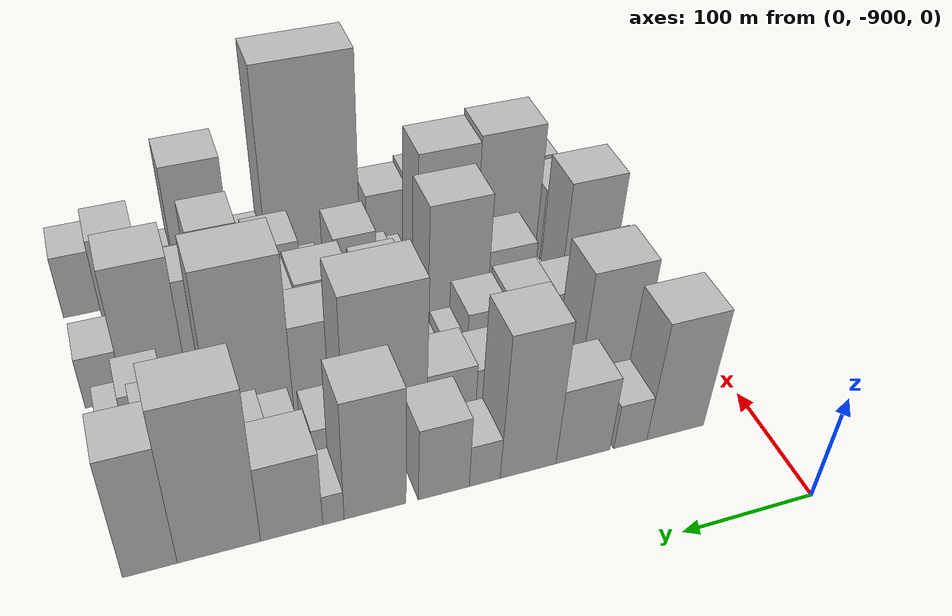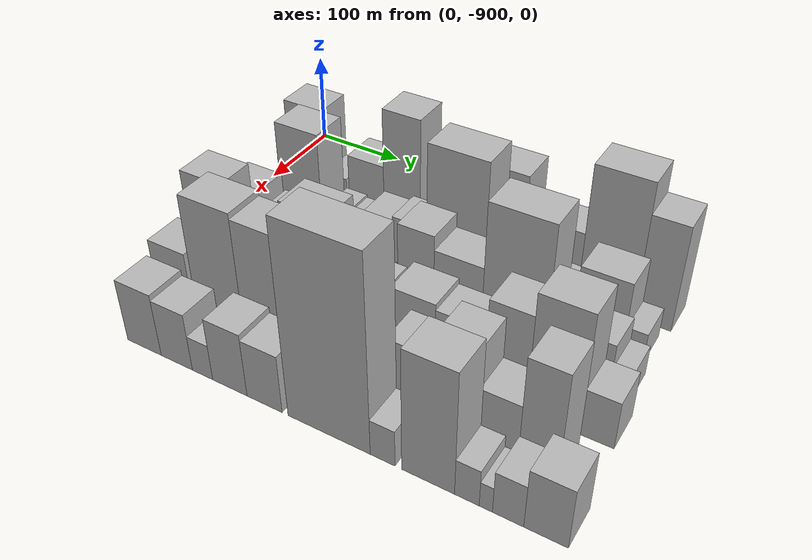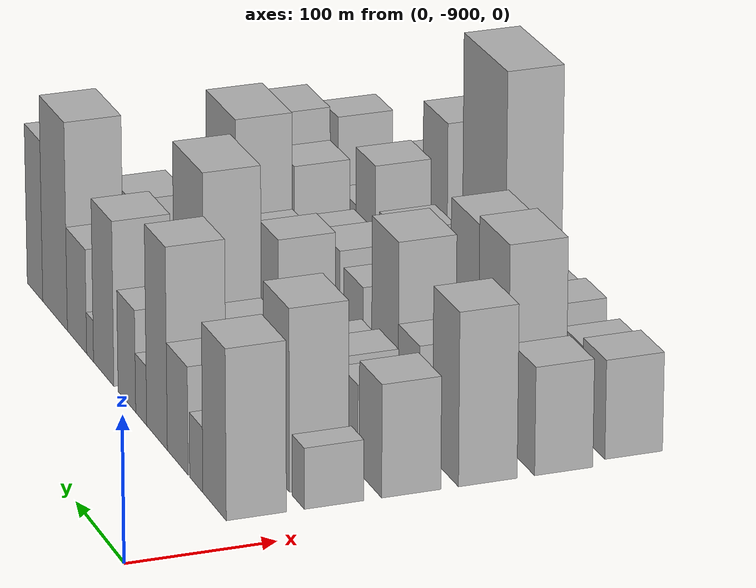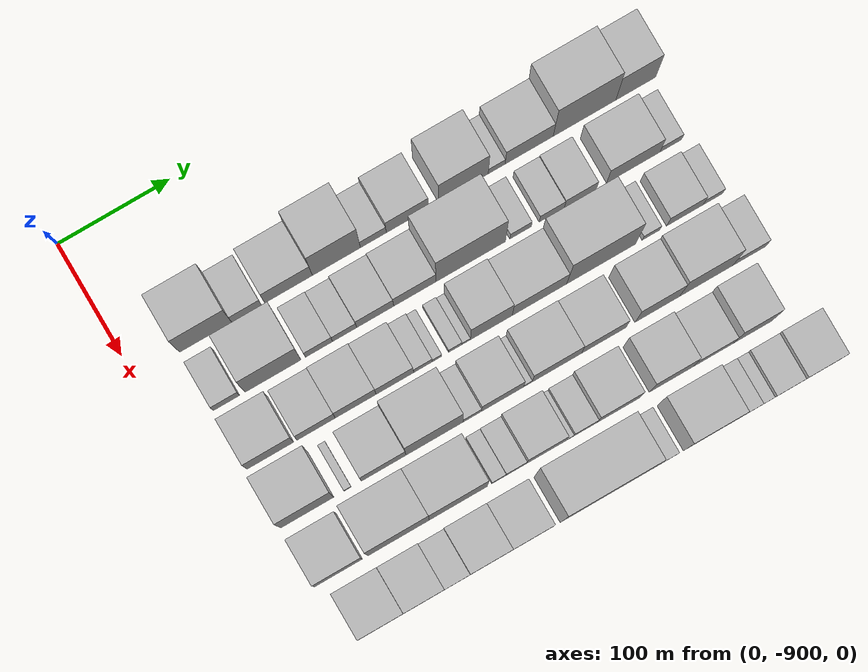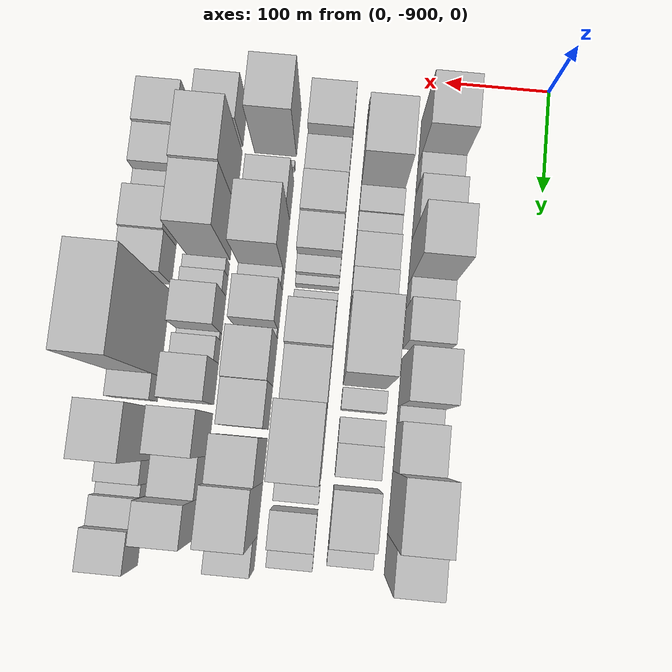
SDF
<sdf version="1.6">
 <world name="default">
  <model name="building_1">
   <static>1</static>
   <pose>100.0000 -836.9546 0 0.000000 0.000000 0.000000</pose>
   <link name="link">
    <pose>0 0 58.50 0 0 0</pose>
    <collision name="collision"><geometry><box><size>40.0000 46.0908 117.0000</size></box></geometry></collision>
    <visual name="visual">
     <cast_shadows>0</cast_shadows>
     <geometry><box><size>40.0000 46.0908 117.0000</size></box></geometry>
     <material>
      <script>
       <uri>model://HANNAS_wall/materials/scripts</uri>
       <uri>model://HANNAS_wall/materials/textures</uri>
       <name>vrc/HANNAS_wall</name>
      </script>
     </material>
    </visual>
   </link>
  </model>
  <model name="building_2">
   <static>1</static>
   <pose>100.0000 -800.7105 0 0.000000 0.000000 0.000000</pose>
   <link name="link">
    <pose>0 0 22.50 0 0 0</pose>
    <collision name="collision"><geometry><box><size>40.0000 26.3974 45.0000</size></box></geometry></collision>
    <visual name="visual">
     <cast_shadows>0</cast_shadows>
     <geometry><box><size>40.0000 26.3974 45.0000</size></box></geometry>
     <material>
      <script>
       <uri>model://HANNAS_wall/materials/scripts</uri>
       <uri>model://HANNAS_wall/materials/textures</uri>
       <name>vrc/HANNAS_wall</name>
      </script>
     </material>
    </visual>
   </link>
  </model>
  <model name="building_3">
   <static>1</static>
   <pose>100.0000 -763.3502 0 0.000000 0.000000 0.000000</pose>
   <link name="link">
    <pose>0 0 37.50 0 0 0</pose>
    <collision name="collision"><geometry><box><size>40.0000 42.3233 75.0000</size></box></geometry></collision>
    <visual name="visual">
     <cast_shadows>0</cast_shadows>
     <geometry><box><size>40.0000 42.3233 75.0000</size></box></geometry>
     <material>
      <script>
       <uri>model://HANNAS_wall/materials/scripts</uri>
       <uri>model://HANNAS_wall/materials/textures</uri>
       <name>vrc/HANNAS_wall</name>
      </script>
     </material>
    </visual>
   </link>
  </model>
  <model name="building_4">
   <static>1</static>
   <pose>100.0000 -720.8452 0 0.000000 0.000000 0.000000</pose>
   <link name="link">
    <pose>0 0 70.50 0 0 0</pose>
    <collision name="collision"><geometry><box><size>40.0000 42.6867 141.0000</size></box></geometry></collision>
    <visual name="visual">
     <cast_shadows>0</cast_shadows>
     <geometry><box><size>40.0000 42.6867 141.0000</size></box></geometry>
     <material>
      <script>
       <uri>model://HANNAS_wall/materials/scripts</uri>
       <uri>model://HANNAS_wall/materials/textures</uri>
       <name>vrc/HANNAS_wall</name>
      </script>
     </material>
    </visual>
   </link>
  </model>
  <model name="building_5">
   <static>1</static>
   <pose>100.0000 -687.9397 0 0.000000 0.000000 0.000000</pose>
   <link name="link">
    <pose>0 0 21.00 0 0 0</pose>
    <collision name="collision"><geometry><box><size>40.0000 23.1242 42.0000</size></box></geometry></collision>
    <visual name="visual">
     <cast_shadows>0</cast_shadows>
     <geometry><box><size>40.0000 23.1242 42.0000</size></box></geometry>
     <material>
      <script>
       <uri>model://HANNAS_wall/materials/scripts</uri>
       <uri>model://HANNAS_wall/materials/textures</uri>
       <name>vrc/HANNAS_wall</name>
      </script>
     </material>
    </visual>
   </link>
  </model>
  <model name="building_6">
   <static>1</static>
   <pose>100.0000 -657.6483 0 0.000000 0.000000 0.000000</pose>
   <link name="link">
    <pose>0 0 36.00 0 0 0</pose>
    <collision name="collision"><geometry><box><size>40.0000 37.4587 72.0000</size></box></geometry></collision>
    <visual name="visual">
     <cast_shadows>0</cast_shadows>
     <geometry><box><size>40.0000 37.4587 72.0000</size></box></geometry>
     <material>
      <script>
       <uri>model://HANNAS_wall/materials/scripts</uri>
       <uri>model://HANNAS_wall/materials/textures</uri>
       <name>vrc/HANNAS_wall</name>
      </script>
     </material>
    </visual>
   </link>
  </model>
  <model name="building_7">
   <static>1</static>
   <pose>100.0000 -607.7722 0 0.000000 0.000000 0.000000</pose>
   <link name="link">
    <pose>0 0 58.50 0 0 0</pose>
    <collision name="collision"><geometry><box><size>40.0000 44.2936 117.0000</size></box></geometry></collision>
    <visual name="visual">
     <cast_shadows>0</cast_shadows>
     <geometry><box><size>40.0000 44.2936 117.0000</size></box></geometry>
     <material>
      <script>
       <uri>model://HANNAS_wall/materials/scripts</uri>
       <uri>model://HANNAS_wall/materials/textures</uri>
       <name>vrc/HANNAS_wall</name>
      </script>
     </material>
    </visual>
   </link>
  </model>
  <model name="building_8">
   <static>1</static>
   <pose>100.0000 -578.1136 0 0.000000 0.000000 0.000000</pose>
   <link name="link">
    <pose>0 0 15.00 0 0 0</pose>
    <collision name="collision"><geometry><box><size>40.0000 15.0235 30.0000</size></box></geometry></collision>
    <visual name="visual">
     <cast_shadows>0</cast_shadows>
     <geometry><box><size>40.0000 15.0235 30.0000</size></box></geometry>
     <material>
      <script>
       <uri>model://HANNAS_wall/materials/scripts</uri>
       <uri>model://HANNAS_wall/materials/textures</uri>
       <name>vrc/HANNAS_wall</name>
      </script>
     </material>
    </visual>
   </link>
  </model>
  <model name="building_9">
   <static>1</static>
   <pose>100.0000 -549.1109 0 0.000000 0.000000 0.000000</pose>
   <link name="link">
    <pose>0 0 37.50 0 0 0</pose>
    <collision name="collision"><geometry><box><size>40.0000 42.9820 75.0000</size></box></geometry></collision>
    <visual name="visual">
     <cast_shadows>0</cast_shadows>
     <geometry><box><size>40.0000 42.9820 75.0000</size></box></geometry>
     <material>
      <script>
       <uri>model://HANNAS_wall/materials/scripts</uri>
       <uri>model://HANNAS_wall/materials/textures</uri>
       <name>vrc/HANNAS_wall</name>
      </script>
     </material>
    </visual>
   </link>
  </model>
  <model name="building_10">
   <static>1</static>
   <pose>100.0000 -499.6481 0 0.000000 0.000000 0.000000</pose>
   <link name="link">
    <pose>0 0 75.00 0 0 0</pose>
    <collision name="collision"><geometry><box><size>40.0000 55.9435 150.0000</size></box></geometry></collision>
    <visual name="visual">
     <cast_shadows>0</cast_shadows>
     <geometry><box><size>40.0000 55.9435 150.0000</size></box></geometry>
     <material>
      <script>
       <uri>model://HANNAS_wall/materials/scripts</uri>
       <uri>model://HANNAS_wall/materials/textures</uri>
       <name>vrc/HANNAS_wall</name>
      </script>
     </material>
    </visual>
   </link>
  </model>
  <model name="building_11">
   <static>1</static>
   <pose>100.0000 -453.7469 0 0.000000 0.000000 0.000000</pose>
   <link name="link">
    <pose>0 0 58.50 0 0 0</pose>
    <collision name="collision"><geometry><box><size>40.0000 35.8590 117.0000</size></box></geometry></collision>
    <visual name="visual">
     <cast_shadows>0</cast_shadows>
     <geometry><box><size>40.0000 35.8590 117.0000</size></box></geometry>
     <material>
      <script>
       <uri>model://HANNAS_wall/materials/scripts</uri>
       <uri>model://HANNAS_wall/materials/textures</uri>
       <name>vrc/HANNAS_wall</name>
      </script>
     </material>
    </visual>
   </link>
  </model>
  <model name="building_49">
   <static>1</static>
   <pose>152.0000 -848.3407 0 0.000000 0.000000 0.000000</pose>
   <link name="link">
    <pose>0 0 21.00 0 0 0</pose>
    <collision name="collision"><geometry><box><size>40.0000 23.3186 42.0000</size></box></geometry></collision>
    <visual name="visual">
     <cast_shadows>0</cast_shadows>
     <geometry><box><size>40.0000 23.3186 42.0000</size></box></geometry>
     <material>
      <script>
       <uri>model://HANNAS_wall/materials/scripts</uri>
       <uri>model://HANNAS_wall/materials/textures</uri>
       <name>vrc/HANNAS_wall</name>
      </script>
     </material>
    </visual>
   </link>
  </model>
  <model name="building_50">
   <static>1</static>
   <pose>152.0000 -806.9948 0 0.000000 0.000000 0.000000</pose>
   <link name="link">
    <pose>0 0 63.00 0 0 0</pose>
    <collision name="collision"><geometry><box><size>40.0000 49.3733 126.0000</size></box></geometry></collision>
    <visual name="visual">
     <cast_shadows>0</cast_shadows>
     <geometry><box><size>40.0000 49.3733 126.0000</size></box></geometry>
     <material>
      <script>
       <uri>model://HANNAS_wall/materials/scripts</uri>
       <uri>model://HANNAS_wall/materials/textures</uri>
       <name>vrc/HANNAS_wall</name>
      </script>
     </material>
    </visual>
   </link>
  </model>
  <model name="building_51">
   <static>1</static>
   <pose>152.0000 -766.2804 0 0.000000 0.000000 0.000000</pose>
   <link name="link">
    <pose>0 0 22.50 0 0 0</pose>
    <collision name="collision"><geometry><box><size>40.0000 24.0554 45.0000</size></box></geometry></collision>
    <visual name="visual">
     <cast_shadows>0</cast_shadows>
     <geometry><box><size>40.0000 24.0554 45.0000</size></box></geometry>
     <material>
      <script>
       <uri>model://HANNAS_wall/materials/scripts</uri>
       <uri>model://HANNAS_wall/materials/textures</uri>
       <name>vrc/HANNAS_wall</name>
      </script>
     </material>
    </visual>
   </link>
  </model>
  <model name="building_52">
   <static>1</static>
   <pose>152.0000 -743.5735 0 0.000000 0.000000 0.000000</pose>
   <link name="link">
    <pose>0 0 21.00 0 0 0</pose>
    <collision name="collision"><geometry><box><size>40.0000 21.3583 42.0000</size></box></geometry></collision>
    <visual name="visual">
     <cast_shadows>0</cast_shadows>
     <geometry><box><size>40.0000 21.3583 42.0000</size></box></geometry>
     <material>
      <script>
       <uri>model://HANNAS_wall/materials/scripts</uri>
       <uri>model://HANNAS_wall/materials/textures</uri>
       <name>vrc/HANNAS_wall</name>
      </script>
     </material>
    </visual>
   </link>
  </model>
  <model name="building_53">
   <static>1</static>
   <pose>152.0000 -716.4333 0 0.000000 0.000000 0.000000</pose>
   <link name="link">
    <pose>0 0 28.50 0 0 0</pose>
    <collision name="collision"><geometry><box><size>40.0000 32.9222 57.0000</size></box></geometry></collision>
    <visual name="visual">
     <cast_shadows>0</cast_shadows>
     <geometry><box><size>40.0000 32.9222 57.0000</size></box></geometry>
     <material>
      <script>
       <uri>model://HANNAS_wall/materials/scripts</uri>
       <uri>model://HANNAS_wall/materials/textures</uri>
       <name>vrc/HANNAS_wall</name>
      </script>
     </material>
    </visual>
   </link>
  </model>
  <model name="building_54">
   <static>1</static>
   <pose>152.0000 -681.1485 0 0.000000 0.000000 0.000000</pose>
   <link name="link">
    <pose>0 0 31.50 0 0 0</pose>
    <collision name="collision"><geometry><box><size>40.0000 37.6475 63.0000</size></box></geometry></collision>
    <visual name="visual">
     <cast_shadows>0</cast_shadows>
     <geometry><box><size>40.0000 37.6475 63.0000</size></box></geometry>
     <material>
      <script>
       <uri>model://HANNAS_wall/materials/scripts</uri>
       <uri>model://HANNAS_wall/materials/textures</uri>
       <name>vrc/HANNAS_wall</name>
      </script>
     </material>
    </visual>
   </link>
  </model>
  <model name="building_55">
   <static>1</static>
   <pose>152.0000 -631.4597 0 0.000000 0.000000 0.000000</pose>
   <link name="link">
    <pose>0 0 78.00 0 0 0</pose>
    <collision name="collision"><geometry><box><size>40.0000 61.7300 156.0000</size></box></geometry></collision>
    <visual name="visual">
     <cast_shadows>0</cast_shadows>
     <geometry><box><size>40.0000 61.7300 156.0000</size></box></geometry>
     <material>
      <script>
       <uri>model://HANNAS_wall/materials/scripts</uri>
       <uri>model://HANNAS_wall/materials/textures</uri>
       <name>vrc/HANNAS_wall</name>
      </script>
     </material>
    </visual>
   </link>
  </model>
  <model name="building_56">
   <static>1</static>
   <pose>152.0000 -587.0116 0 0.000000 0.000000 0.000000</pose>
   <link name="link">
    <pose>0 0 18.00 0 0 0</pose>
    <collision name="collision"><geometry><box><size>40.0000 19.1662 36.0000</size></box></geometry></collision>
    <visual name="visual">
     <cast_shadows>0</cast_shadows>
     <geometry><box><size>40.0000 19.1662 36.0000</size></box></geometry>
     <material>
      <script>
       <uri>model://HANNAS_wall/materials/scripts</uri>
       <uri>model://HANNAS_wall/materials/textures</uri>
       <name>vrc/HANNAS_wall</name>
      </script>
     </material>
    </visual>
   </link>
  </model>
  <model name="building_57">
   <static>1</static>
   <pose>152.0000 -559.1922 0 0.000000 0.000000 0.000000</pose>
   <link name="link">
    <pose>0 0 21.00 0 0 0</pose>
    <collision name="collision"><geometry><box><size>40.0000 22.4726 42.0000</size></box></geometry></collision>
    <visual name="visual">
     <cast_shadows>0</cast_shadows>
     <geometry><box><size>40.0000 22.4726 42.0000</size></box></geometry>
     <material>
      <script>
       <uri>model://HANNAS_wall/materials/scripts</uri>
       <uri>model://HANNAS_wall/materials/textures</uri>
       <name>vrc/HANNAS_wall</name>
      </script>
     </material>
    </visual>
   </link>
  </model>
  <model name="building_58">
   <static>1</static>
   <pose>152.0000 -533.6218 0 0.000000 0.000000 0.000000</pose>
   <link name="link">
    <pose>0 0 24.00 0 0 0</pose>
    <collision name="collision"><geometry><box><size>40.0000 28.6683 48.0000</size></box></geometry></collision>
    <visual name="visual">
     <cast_shadows>0</cast_shadows>
     <geometry><box><size>40.0000 28.6683 48.0000</size></box></geometry>
     <material>
      <script>
       <uri>model://HANNAS_wall/materials/scripts</uri>
       <uri>model://HANNAS_wall/materials/textures</uri>
       <name>vrc/HANNAS_wall</name>
      </script>
     </material>
    </visual>
   </link>
  </model>
  <model name="building_59">
   <static>1</static>
   <pose>152.0000 -486.4755 0 0.000000 0.000000 0.000000</pose>
   <link name="link">
    <pose>0 0 40.50 0 0 0</pose>
    <collision name="collision"><geometry><box><size>40.0000 47.6243 81.0000</size></box></geometry></collision>
    <visual name="visual">
     <cast_shadows>0</cast_shadows>
     <geometry><box><size>40.0000 47.6243 81.0000</size></box></geometry>
     <material>
      <script>
       <uri>model://HANNAS_wall/materials/scripts</uri>
       <uri>model://HANNAS_wall/materials/textures</uri>
       <name>vrc/HANNAS_wall</name>
      </script>
     </material>
    </visual>
   </link>
  </model>
  <model name="building_60">
   <static>1</static>
   <pose>152.0000 -452.9226 0 0.000000 0.000000 0.000000</pose>
   <link name="link">
    <pose>0 0 16.50 0 0 0</pose>
    <collision name="collision"><geometry><box><size>40.0000 19.4815 33.0000</size></box></geometry></collision>
    <visual name="visual">
     <cast_shadows>0</cast_shadows>
     <geometry><box><size>40.0000 19.4815 33.0000</size></box></geometry>
     <material>
      <script>
       <uri>model://HANNAS_wall/materials/scripts</uri>
       <uri>model://HANNAS_wall/materials/textures</uri>
       <name>vrc/HANNAS_wall</name>
      </script>
     </material>
    </visual>
   </link>
  </model>
  <model name="building_94">
   <static>1</static>
   <pose>204.0000 -839.3285 0 0.000000 0.000000 0.000000</pose>
   <link name="link">
    <pose>0 0 39.00 0 0 0</pose>
    <collision name="collision"><geometry><box><size>40.0000 41.3431 78.0000</size></box></geometry></collision>
    <visual name="visual">
     <cast_shadows>0</cast_shadows>
     <geometry><box><size>40.0000 41.3431 78.0000</size></box></geometry>
     <material>
      <script>
       <uri>model://HANNAS_wall/materials/scripts</uri>
       <uri>model://HANNAS_wall/materials/textures</uri>
       <name>vrc/HANNAS_wall</name>
      </script>
     </material>
    </visual>
   </link>
  </model>
  <model name="building_95">
   <static>1</static>
   <pose>204.0000 -798.7464 0 0.000000 0.000000 0.000000</pose>
   <link name="link">
    <pose>0 0 30.00 0 0 0</pose>
    <collision name="collision"><geometry><box><size>40.0000 33.8210 60.0000</size></box></geometry></collision>
    <visual name="visual">
     <cast_shadows>0</cast_shadows>
     <geometry><box><size>40.0000 33.8210 60.0000</size></box></geometry>
     <material>
      <script>
       <uri>model://HANNAS_wall/materials/scripts</uri>
       <uri>model://HANNAS_wall/materials/textures</uri>
       <name>vrc/HANNAS_wall</name>
      </script>
     </material>
    </visual>
   </link>
  </model>
  <model name="building_96">
   <static>1</static>
   <pose>204.0000 -763.7818 0 0.000000 0.000000 0.000000</pose>
   <link name="link">
    <pose>0 0 33.00 0 0 0</pose>
    <collision name="collision"><geometry><box><size>40.0000 36.1082 66.0000</size></box></geometry></collision>
    <visual name="visual">
     <cast_shadows>0</cast_shadows>
     <geometry><box><size>40.0000 36.1082 66.0000</size></box></geometry>
     <material>
      <script>
       <uri>model://HANNAS_wall/materials/scripts</uri>
       <uri>model://HANNAS_wall/materials/textures</uri>
       <name>vrc/HANNAS_wall</name>
      </script>
     </material>
    </visual>
   </link>
  </model>
  <model name="building_97">
   <static>1</static>
   <pose>204.0000 -729.1029 0 0.000000 0.000000 0.000000</pose>
   <link name="link">
    <pose>0 0 30.00 0 0 0</pose>
    <collision name="collision"><geometry><box><size>40.0000 33.2497 60.0000</size></box></geometry></collision>
    <visual name="visual">
     <cast_shadows>0</cast_shadows>
     <geometry><box><size>40.0000 33.2497 60.0000</size></box></geometry>
     <material>
      <script>
       <uri>model://HANNAS_wall/materials/scripts</uri>
       <uri>model://HANNAS_wall/materials/textures</uri>
       <name>vrc/HANNAS_wall</name>
      </script>
     </material>
    </visual>
   </link>
  </model>
  <model name="building_98">
   <static>1</static>
   <pose>204.0000 -704.1733 0 0.000000 0.000000 0.000000</pose>
   <link name="link">
    <pose>0 0 16.50 0 0 0</pose>
    <collision name="collision"><geometry><box><size>40.0000 16.6094 33.0000</size></box></geometry></collision>
    <visual name="visual">
     <cast_shadows>0</cast_shadows>
     <geometry><box><size>40.0000 16.6094 33.0000</size></box></geometry>
     <material>
      <script>
       <uri>model://HANNAS_wall/materials/scripts</uri>
       <uri>model://HANNAS_wall/materials/textures</uri>
       <name>vrc/HANNAS_wall</name>
      </script>
     </material>
    </visual>
   </link>
  </model>
  <model name="building_99">
   <static>1</static>
   <pose>204.0000 -691.5956 0 0.000000 0.000000 0.000000</pose>
   <link name="link">
    <pose>0 0 10.50 0 0 0</pose>
    <collision name="collision"><geometry><box><size>40.0000 8.5460 21.0000</size></box></geometry></collision>
    <visual name="visual">
     <cast_shadows>0</cast_shadows>
     <geometry><box><size>40.0000 8.5460 21.0000</size></box></geometry>
     <material>
      <script>
       <uri>model://HANNAS_wall/materials/scripts</uri>
       <uri>model://HANNAS_wall/materials/textures</uri>
       <name>vrc/HANNAS_wall</name>
      </script>
     </material>
    </visual>
   </link>
  </model>
  <model name="building_100">
   <static>1</static>
   <pose>204.0000 -675.3369 0 0.000000 0.000000 0.000000</pose>
   <link name="link">
    <pose>0 0 12.00 0 0 0</pose>
    <collision name="collision"><geometry><box><size>40.0000 11.9713 24.0000</size></box></geometry></collision>
    <visual name="visual">
     <cast_shadows>0</cast_shadows>
     <geometry><box><size>40.0000 11.9713 24.0000</size></box></geometry>
     <material>
      <script>
       <uri>model://HANNAS_wall/materials/scripts</uri>
       <uri>model://HANNAS_wall/materials/textures</uri>
       <name>vrc/HANNAS_wall</name>
      </script>
     </material>
    </visual>
   </link>
  </model>
  <model name="building_101">
   <static>1</static>
   <pose>204.0000 -665.6635 0 0.000000 0.000000 0.000000</pose>
   <link name="link">
    <pose>0 0 7.50 0 0 0</pose>
    <collision name="collision"><geometry><box><size>40.0000 7.3756 15.0000</size></box></geometry></collision>
    <visual name="visual">
     <cast_shadows>0</cast_shadows>
     <geometry><box><size>40.0000 7.3756 15.0000</size></box></geometry>
     <material>
      <script>
       <uri>model://HANNAS_wall/materials/scripts</uri>
       <uri>model://HANNAS_wall/materials/textures</uri>
       <name>vrc/HANNAS_wall</name>
      </script>
     </material>
    </visual>
   </link>
  </model>
  <model name="building_102">
   <static>1</static>
   <pose>204.0000 -643.3787 0 0.000000 0.000000 0.000000</pose>
   <link name="link">
    <pose>0 0 51.00 0 0 0</pose>
    <collision name="collision"><geometry><box><size>40.0000 37.1941 102.0000</size></box></geometry></collision>
    <visual name="visual">
     <cast_shadows>0</cast_shadows>
     <geometry><box><size>40.0000 37.1941 102.0000</size></box></geometry>
     <material>
      <script>
       <uri>model://HANNAS_wall/materials/scripts</uri>
       <uri>model://HANNAS_wall/materials/textures</uri>
       <name>vrc/HANNAS_wall</name>
      </script>
     </material>
    </visual>
   </link>
  </model>
  <model name="building_103">
   <static>1</static>
   <pose>204.0000 -600.5441 0 0.000000 0.000000 0.000000</pose>
   <link name="link">
    <pose>0 0 43.50 0 0 0</pose>
    <collision name="collision"><geometry><box><size>40.0000 48.4751 87.0000</size></box></geometry></collision>
    <visual name="visual">
     <cast_shadows>0</cast_shadows>
     <geometry><box><size>40.0000 48.4751 87.0000</size></box></geometry>
     <material>
      <script>
       <uri>model://HANNAS_wall/materials/scripts</uri>
       <uri>model://HANNAS_wall/materials/textures</uri>
       <name>vrc/HANNAS_wall</name>
      </script>
     </material>
    </visual>
   </link>
  </model>
  <model name="building_104">
   <static>1</static>
   <pose>204.0000 -545.6280 0 0.000000 0.000000 0.000000</pose>
   <link name="link">
    <pose>0 0 78.00 0 0 0</pose>
    <collision name="collision"><geometry><box><size>40.0000 61.3572 156.0000</size></box></geometry></collision>
    <visual name="visual">
     <cast_shadows>0</cast_shadows>
     <geometry><box><size>40.0000 61.3572 156.0000</size></box></geometry>
     <material>
      <script>
       <uri>model://HANNAS_wall/materials/scripts</uri>
       <uri>model://HANNAS_wall/materials/textures</uri>
       <name>vrc/HANNAS_wall</name>
      </script>
     </material>
    </visual>
   </link>
  </model>
  <model name="building_105">
   <static>1</static>
   <pose>204.0000 -501.0361 0 0.000000 0.000000 0.000000</pose>
   <link name="link">
    <pose>0 0 15.00 0 0 0</pose>
    <collision name="collision"><geometry><box><size>40.0000 15.8264 30.0000</size></box></geometry></collision>
    <visual name="visual">
     <cast_shadows>0</cast_shadows>
     <geometry><box><size>40.0000 15.8264 30.0000</size></box></geometry>
     <material>
      <script>
       <uri>model://HANNAS_wall/materials/scripts</uri>
       <uri>model://HANNAS_wall/materials/textures</uri>
       <name>vrc/HANNAS_wall</name>
      </script>
     </material>
    </visual>
   </link>
  </model>
  <model name="building_106">
   <static>1</static>
   <pose>204.0000 -470.7865 0 0.000000 0.000000 0.000000</pose>
   <link name="link">
    <pose>0 0 28.50 0 0 0</pose>
    <collision name="collision"><geometry><box><size>40.0000 32.6728 57.0000</size></box></geometry></collision>
    <visual name="visual">
     <cast_shadows>0</cast_shadows>
     <geometry><box><size>40.0000 32.6728 57.0000</size></box></geometry>
     <material>
      <script>
       <uri>model://HANNAS_wall/materials/scripts</uri>
       <uri>model://HANNAS_wall/materials/textures</uri>
       <name>vrc/HANNAS_wall</name>
      </script>
     </material>
    </visual>
   </link>
  </model>
  <model name="building_107">
   <static>1</static>
   <pose>204.0000 -445.6400 0 0.000000 0.000000 0.000000</pose>
   <link name="link">
    <pose>0 0 16.50 0 0 0</pose>
    <collision name="collision"><geometry><box><size>40.0000 17.6203 33.0000</size></box></geometry></collision>
    <visual name="visual">
     <cast_shadows>0</cast_shadows>
     <geometry><box><size>40.0000 17.6203 33.0000</size></box></geometry>
     <material>
      <script>
       <uri>model://HANNAS_wall/materials/scripts</uri>
       <uri>model://HANNAS_wall/materials/textures</uri>
       <name>vrc/HANNAS_wall</name>
      </script>
     </material>
    </visual>
   </link>
  </model>
  <model name="building_142">
   <static>1</static>
   <pose>256.0000 -836.6003 0 0.000000 0.000000 0.000000</pose>
   <link name="link">
    <pose>0 0 60.00 0 0 0</pose>
    <collision name="collision"><geometry><box><size>40.0000 46.7994 120.0000</size></box></geometry></collision>
    <visual name="visual">
     <cast_shadows>0</cast_shadows>
     <geometry><box><size>40.0000 46.7994 120.0000</size></box></geometry>
     <material>
      <script>
       <uri>model://HANNAS_wall/materials/scripts</uri>
       <uri>model://HANNAS_wall/materials/textures</uri>
       <name>vrc/HANNAS_wall</name>
      </script>
     </material>
    </visual>
   </link>
  </model>
  <model name="building_143">
   <static>1</static>
   <pose>256.0000 -800.9864 0 0.000000 0.000000 0.000000</pose>
   <link name="link">
    <pose>0 0 7.50 0 0 0</pose>
    <collision name="collision"><geometry><box><size>40.0000 6.4284 15.0000</size></box></geometry></collision>
    <visual name="visual">
     <cast_shadows>0</cast_shadows>
     <geometry><box><size>40.0000 6.4284 15.0000</size></box></geometry>
     <material>
      <script>
       <uri>model://HANNAS_wall/materials/scripts</uri>
       <uri>model://HANNAS_wall/materials/textures</uri>
       <name>vrc/HANNAS_wall</name>
      </script>
     </material>
    </visual>
   </link>
  </model>
  <model name="building_144">
   <static>1</static>
   <pose>256.0000 -769.0156 0 0.000000 0.000000 0.000000</pose>
   <link name="link">
    <pose>0 0 34.50 0 0 0</pose>
    <collision name="collision"><geometry><box><size>40.0000 39.5131 69.0000</size></box></geometry></collision>
    <visual name="visual">
     <cast_shadows>0</cast_shadows>
     <geometry><box><size>40.0000 39.5131 69.0000</size></box></geometry>
     <material>
      <script>
       <uri>model://HANNAS_wall/materials/scripts</uri>
       <uri>model://HANNAS_wall/materials/textures</uri>
       <name>vrc/HANNAS_wall</name>
      </script>
     </material>
    </visual>
   </link>
  </model>
  <model name="building_145">
   <static>1</static>
   <pose>256.0000 -724.0854 0 0.000000 0.000000 0.000000</pose>
   <link name="link">
    <pose>0 0 63.00 0 0 0</pose>
    <collision name="collision"><geometry><box><size>40.0000 50.3472 126.0000</size></box></geometry></collision>
    <visual name="visual">
     <cast_shadows>0</cast_shadows>
     <geometry><box><size>40.0000 50.3472 126.0000</size></box></geometry>
     <material>
      <script>
       <uri>model://HANNAS_wall/materials/scripts</uri>
       <uri>model://HANNAS_wall/materials/textures</uri>
       <name>vrc/HANNAS_wall</name>
      </script>
     </material>
    </visual>
   </link>
  </model>
  <model name="building_146">
   <static>1</static>
   <pose>256.0000 -690.6358 0 0.000000 0.000000 0.000000</pose>
   <link name="link">
    <pose>0 0 16.50 0 0 0</pose>
    <collision name="collision"><geometry><box><size>40.0000 16.5521 33.0000</size></box></geometry></collision>
    <visual name="visual">
     <cast_shadows>0</cast_shadows>
     <geometry><box><size>40.0000 16.5521 33.0000</size></box></geometry>
     <material>
      <script>
       <uri>model://HANNAS_wall/materials/scripts</uri>
       <uri>model://HANNAS_wall/materials/textures</uri>
       <name>vrc/HANNAS_wall</name>
      </script>
     </material>
    </visual>
   </link>
  </model>
  <model name="building_147">
   <static>1</static>
   <pose>256.0000 -663.6301 0 0.000000 0.000000 0.000000</pose>
   <link name="link">
    <pose>0 0 34.50 0 0 0</pose>
    <collision name="collision"><geometry><box><size>40.0000 37.4593 69.0000</size></box></geometry></collision>
    <visual name="visual">
     <cast_shadows>0</cast_shadows>
     <geometry><box><size>40.0000 37.4593 69.0000</size></box></geometry>
     <material>
      <script>
       <uri>model://HANNAS_wall/materials/scripts</uri>
       <uri>model://HANNAS_wall/materials/textures</uri>
       <name>vrc/HANNAS_wall</name>
      </script>
     </material>
    </visual>
   </link>
  </model>
  <model name="building_148">
   <static>1</static>
   <pose>256.0000 -641.1919 0 0.000000 0.000000 0.000000</pose>
   <link name="link">
    <pose>0 0 9.00 0 0 0</pose>
    <collision name="collision"><geometry><box><size>40.0000 7.4171 18.0000</size></box></geometry></collision>
    <visual name="visual">
     <cast_shadows>0</cast_shadows>
     <geometry><box><size>40.0000 7.4171 18.0000</size></box></geometry>
     <material>
      <script>
       <uri>model://HANNAS_wall/materials/scripts</uri>
       <uri>model://HANNAS_wall/materials/textures</uri>
       <name>vrc/HANNAS_wall</name>
      </script>
     </material>
    </visual>
   </link>
  </model>
  <model name="building_149">
   <static>1</static>
   <pose>256.0000 -615.4898 0 0.000000 0.000000 0.000000</pose>
   <link name="link">
    <pose>0 0 39.00 0 0 0</pose>
    <collision name="collision"><geometry><box><size>40.0000 43.9872 78.0000</size></box></geometry></collision>
    <visual name="visual">
     <cast_shadows>0</cast_shadows>
     <geometry><box><size>40.0000 43.9872 78.0000</size></box></geometry>
     <material>
      <script>
       <uri>model://HANNAS_wall/materials/scripts</uri>
       <uri>model://HANNAS_wall/materials/textures</uri>
       <name>vrc/HANNAS_wall</name>
      </script>
     </material>
    </visual>
   </link>
  </model>
  <model name="building_150">
   <static>1</static>
   <pose>256.0000 -573.6468 0 0.000000 0.000000 0.000000</pose>
   <link name="link">
    <pose>0 0 36.00 0 0 0</pose>
    <collision name="collision"><geometry><box><size>40.0000 39.6987 72.0000</size></box></geometry></collision>
    <visual name="visual">
     <cast_shadows>0</cast_shadows>
     <geometry><box><size>40.0000 39.6987 72.0000</size></box></geometry>
     <material>
      <script>
       <uri>model://HANNAS_wall/materials/scripts</uri>
       <uri>model://HANNAS_wall/materials/textures</uri>
       <name>vrc/HANNAS_wall</name>
      </script>
     </material>
    </visual>
   </link>
  </model>
  <model name="building_151">
   <static>1</static>
   <pose>256.0000 -526.0276 0 0.000000 0.000000 0.000000</pose>
   <link name="link">
    <pose>0 0 52.50 0 0 0</pose>
    <collision name="collision"><geometry><box><size>40.0000 39.5398 105.0000</size></box></geometry></collision>
    <visual name="visual">
     <cast_shadows>0</cast_shadows>
     <geometry><box><size>40.0000 39.5398 105.0000</size></box></geometry>
     <material>
      <script>
       <uri>model://HANNAS_wall/materials/scripts</uri>
       <uri>model://HANNAS_wall/materials/textures</uri>
       <name>vrc/HANNAS_wall</name>
      </script>
     </material>
    </visual>
   </link>
  </model>
  <model name="building_152">
   <static>1</static>
   <pose>256.0000 -482.3636 0 0.000000 0.000000 0.000000</pose>
   <link name="link">
    <pose>0 0 64.50 0 0 0</pose>
    <collision name="collision"><geometry><box><size>40.0000 47.7882 129.0000</size></box></geometry></collision>
    <visual name="visual">
     <cast_shadows>0</cast_shadows>
     <geometry><box><size>40.0000 47.7882 129.0000</size></box></geometry>
     <material>
      <script>
       <uri>model://HANNAS_wall/materials/scripts</uri>
       <uri>model://HANNAS_wall/materials/textures</uri>
       <name>vrc/HANNAS_wall</name>
      </script>
     </material>
    </visual>
   </link>
  </model>
  <model name="building_153">
   <static>1</static>
   <pose>256.0000 -443.7558 0 0.000000 0.000000 0.000000</pose>
   <link name="link">
    <pose>0 0 25.50 0 0 0</pose>
    <collision name="collision"><geometry><box><size>40.0000 29.4273 51.0000</size></box></geometry></collision>
    <visual name="visual">
     <cast_shadows>0</cast_shadows>
     <geometry><box><size>40.0000 29.4273 51.0000</size></box></geometry>
     <material>
      <script>
       <uri>model://HANNAS_wall/materials/scripts</uri>
       <uri>model://HANNAS_wall/materials/textures</uri>
       <name>vrc/HANNAS_wall</name>
      </script>
     </material>
    </visual>
   </link>
  </model>
  <model name="building_194">
   <static>1</static>
   <pose>308.0000 -838.9709 0 0.000000 0.000000 0.000000</pose>
   <link name="link">
    <pose>0 0 37.50 0 0 0</pose>
    <collision name="collision"><geometry><box><size>40.0000 42.0582 75.0000</size></box></geometry></collision>
    <visual name="visual">
     <cast_shadows>0</cast_shadows>
     <geometry><box><size>40.0000 42.0582 75.0000</size></box></geometry>
     <material>
      <script>
       <uri>model://HANNAS_wall/materials/scripts</uri>
       <uri>model://HANNAS_wall/materials/textures</uri>
       <name>vrc/HANNAS_wall</name>
      </script>
     </material>
    </visual>
   </link>
  </model>
  <model name="building_195">
   <static>1</static>
   <pose>308.0000 -785.8591 0 0.000000 0.000000 0.000000</pose>
   <link name="link">
    <pose>0 0 70.50 0 0 0</pose>
    <collision name="collision"><geometry><box><size>40.0000 54.1654 141.0000</size></box></geometry></collision>
    <visual name="visual">
     <cast_shadows>0</cast_shadows>
     <geometry><box><size>40.0000 54.1654 141.0000</size></box></geometry>
     <material>
      <script>
       <uri>model://HANNAS_wall/materials/scripts</uri>
       <uri>model://HANNAS_wall/materials/textures</uri>
       <name>vrc/HANNAS_wall</name>
      </script>
     </material>
    </visual>
   </link>
  </model>
  <model name="building_196">
   <static>1</static>
   <pose>308.0000 -733.1106 0 0.000000 0.000000 0.000000</pose>
   <link name="link">
    <pose>0 0 67.50 0 0 0</pose>
    <collision name="collision"><geometry><box><size>40.0000 51.3316 135.0000</size></box></geometry></collision>
    <visual name="visual">
     <cast_shadows>0</cast_shadows>
     <geometry><box><size>40.0000 51.3316 135.0000</size></box></geometry>
     <material>
      <script>
       <uri>model://HANNAS_wall/materials/scripts</uri>
       <uri>model://HANNAS_wall/materials/textures</uri>
       <name>vrc/HANNAS_wall</name>
      </script>
     </material>
    </visual>
   </link>
  </model>
  <model name="building_197">
   <static>1</static>
   <pose>308.0000 -697.1808 0 0.000000 0.000000 0.000000</pose>
   <link name="link">
    <pose>0 0 13.50 0 0 0</pose>
    <collision name="collision"><geometry><box><size>40.0000 12.5280 27.0000</size></box></geometry></collision>
    <visual name="visual">
     <cast_shadows>0</cast_shadows>
     <geometry><box><size>40.0000 12.5280 27.0000</size></box></geometry>
     <material>
      <script>
       <uri>model://HANNAS_wall/materials/scripts</uri>
       <uri>model://HANNAS_wall/materials/textures</uri>
       <name>vrc/HANNAS_wall</name>
      </script>
     </material>
    </visual>
   </link>
  </model>
  <model name="building_198">
   <static>1</static>
   <pose>308.0000 -681.6894 0 0.000000 0.000000 0.000000</pose>
   <link name="link">
    <pose>0 0 16.50 0 0 0</pose>
    <collision name="collision"><geometry><box><size>40.0000 18.4548 33.0000</size></box></geometry></collision>
    <visual name="visual">
     <cast_shadows>0</cast_shadows>
     <geometry><box><size>40.0000 18.4548 33.0000</size></box></geometry>
     <material>
      <script>
       <uri>model://HANNAS_wall/materials/scripts</uri>
       <uri>model://HANNAS_wall/materials/textures</uri>
       <name>vrc/HANNAS_wall</name>
      </script>
     </material>
    </visual>
   </link>
  </model>
  <model name="building_199">
   <static>1</static>
   <pose>308.0000 -654.8012 0 0.000000 0.000000 0.000000</pose>
   <link name="link">
    <pose>0 0 34.50 0 0 0</pose>
    <collision name="collision"><geometry><box><size>40.0000 35.3216 69.0000</size></box></geometry></collision>
    <visual name="visual">
     <cast_shadows>0</cast_shadows>
     <geometry><box><size>40.0000 35.3216 69.0000</size></box></geometry>
     <material>
      <script>
       <uri>model://HANNAS_wall/materials/scripts</uri>
       <uri>model://HANNAS_wall/materials/textures</uri>
       <name>vrc/HANNAS_wall</name>
      </script>
     </material>
    </visual>
   </link>
  </model>
  <model name="building_200">
   <static>1</static>
   <pose>308.0000 -633.8613 0 0.000000 0.000000 0.000000</pose>
   <link name="link">
    <pose>0 0 7.50 0 0 0</pose>
    <collision name="collision"><geometry><box><size>40.0000 6.5582 15.0000</size></box></geometry></collision>
    <visual name="visual">
     <cast_shadows>0</cast_shadows>
     <geometry><box><size>40.0000 6.5582 15.0000</size></box></geometry>
     <material>
      <script>
       <uri>model://HANNAS_wall/materials/scripts</uri>
       <uri>model://HANNAS_wall/materials/textures</uri>
       <name>vrc/HANNAS_wall</name>
      </script>
     </material>
    </visual>
   </link>
  </model>
  <model name="building_201">
   <static>1</static>
   <pose>308.0000 -620.0903 0 0.000000 0.000000 0.000000</pose>
   <link name="link">
    <pose>0 0 18.00 0 0 0</pose>
    <collision name="collision"><geometry><box><size>40.0000 20.9839 36.0000</size></box></geometry></collision>
    <visual name="visual">
     <cast_shadows>0</cast_shadows>
     <geometry><box><size>40.0000 20.9839 36.0000</size></box></geometry>
     <material>
      <script>
       <uri>model://HANNAS_wall/materials/scripts</uri>
       <uri>model://HANNAS_wall/materials/textures</uri>
       <name>vrc/HANNAS_wall</name>
      </script>
     </material>
    </visual>
   </link>
  </model>
  <model name="building_202">
   <static>1</static>
   <pose>308.0000 -590.5399 0 0.000000 0.000000 0.000000</pose>
   <link name="link">
    <pose>0 0 37.50 0 0 0</pose>
    <collision name="collision"><geometry><box><size>40.0000 38.1168 75.0000</size></box></geometry></collision>
    <visual name="visual">
     <cast_shadows>0</cast_shadows>
     <geometry><box><size>40.0000 38.1168 75.0000</size></box></geometry>
     <material>
      <script>
       <uri>model://HANNAS_wall/materials/scripts</uri>
       <uri>model://HANNAS_wall/materials/textures</uri>
       <name>vrc/HANNAS_wall</name>
      </script>
     </material>
    </visual>
   </link>
  </model>
  <model name="building_203">
   <static>1</static>
   <pose>308.0000 -544.1883 0 0.000000 0.000000 0.000000</pose>
   <link name="link">
    <pose>0 0 52.50 0 0 0</pose>
    <collision name="collision"><geometry><box><size>40.0000 38.5865 105.0000</size></box></geometry></collision>
    <visual name="visual">
     <cast_shadows>0</cast_shadows>
     <geometry><box><size>40.0000 38.5865 105.0000</size></box></geometry>
     <material>
      <script>
       <uri>model://HANNAS_wall/materials/scripts</uri>
       <uri>model://HANNAS_wall/materials/textures</uri>
       <name>vrc/HANNAS_wall</name>
      </script>
     </material>
    </visual>
   </link>
  </model>
  <model name="building_204">
   <static>1</static>
   <pose>308.0000 -506.8499 0 0.000000 0.000000 0.000000</pose>
   <link name="link">
    <pose>0 0 31.50 0 0 0</pose>
    <collision name="collision"><geometry><box><size>40.0000 36.0905 63.0000</size></box></geometry></collision>
    <visual name="visual">
     <cast_shadows>0</cast_shadows>
     <geometry><box><size>40.0000 36.0905 63.0000</size></box></geometry>
     <material>
      <script>
       <uri>model://HANNAS_wall/materials/scripts</uri>
       <uri>model://HANNAS_wall/materials/textures</uri>
       <name>vrc/HANNAS_wall</name>
      </script>
     </material>
    </visual>
   </link>
  </model>
  <model name="building_205">
   <static>1</static>
   <pose>308.0000 -471.5269 0 0.000000 0.000000 0.000000</pose>
   <link name="link">
    <pose>0 0 57.00 0 0 0</pose>
    <collision name="collision"><geometry><box><size>40.0000 34.5555 114.0000</size></box></geometry></collision>
    <visual name="visual">
     <cast_shadows>0</cast_shadows>
     <geometry><box><size>40.0000 34.5555 114.0000</size></box></geometry>
     <material>
      <script>
       <uri>model://HANNAS_wall/materials/scripts</uri>
       <uri>model://HANNAS_wall/materials/textures</uri>
       <name>vrc/HANNAS_wall</name>
      </script>
     </material>
    </visual>
   </link>
  </model>
  <model name="building_243">
   <static>1</static>
   <pose>360.0000 -831.1436 0 0.000000 0.000000 0.000000</pose>
   <link name="link">
    <pose>0 0 34.50 0 0 0</pose>
    <collision name="collision"><geometry><box><size>40.0000 39.7128 69.0000</size></box></geometry></collision>
    <visual name="visual">
     <cast_shadows>0</cast_shadows>
     <geometry><box><size>40.0000 39.7128 69.0000</size></box></geometry>
     <material>
      <script>
       <uri>model://HANNAS_wall/materials/scripts</uri>
       <uri>model://HANNAS_wall/materials/textures</uri>
       <name>vrc/HANNAS_wall</name>
      </script>
     </material>
    </visual>
   </link>
  </model>
  <model name="building_244">
   <static>1</static>
   <pose>360.0000 -793.4251 0 0.000000 0.000000 0.000000</pose>
   <link name="link">
    <pose>0 0 31.50 0 0 0</pose>
    <collision name="collision"><geometry><box><size>40.0000 35.7241 63.0000</size></box></geometry></collision>
    <visual name="visual">
     <cast_shadows>0</cast_shadows>
     <geometry><box><size>40.0000 35.7241 63.0000</size></box></geometry>
     <material>
      <script>
       <uri>model://HANNAS_wall/materials/scripts</uri>
       <uri>model://HANNAS_wall/materials/textures</uri>
       <name>vrc/HANNAS_wall</name>
      </script>
     </material>
    </visual>
   </link>
  </model>
  <model name="building_245">
   <static>1</static>
   <pose>360.0000 -764.2604 0 0.000000 0.000000 0.000000</pose>
   <link name="link">
    <pose>0 0 19.50 0 0 0</pose>
    <collision name="collision"><geometry><box><size>40.0000 22.6053 39.0000</size></box></geometry></collision>
    <visual name="visual">
     <cast_shadows>0</cast_shadows>
     <geometry><box><size>40.0000 22.6053 39.0000</size></box></geometry>
     <material>
      <script>
       <uri>model://HANNAS_wall/materials/scripts</uri>
       <uri>model://HANNAS_wall/materials/textures</uri>
       <name>vrc/HANNAS_wall</name>
      </script>
     </material>
    </visual>
   </link>
  </model>
  <model name="building_246">
   <static>1</static>
   <pose>360.0000 -734.3496 0 0.000000 0.000000 0.000000</pose>
   <link name="link">
    <pose>0 0 34.50 0 0 0</pose>
    <collision name="collision"><geometry><box><size>40.0000 37.2163 69.0000</size></box></geometry></collision>
    <visual name="visual">
     <cast_shadows>0</cast_shadows>
     <geometry><box><size>40.0000 37.2163 69.0000</size></box></geometry>
     <material>
      <script>
       <uri>model://HANNAS_wall/materials/scripts</uri>
       <uri>model://HANNAS_wall/materials/textures</uri>
       <name>vrc/HANNAS_wall</name>
      </script>
     </material>
    </visual>
   </link>
  </model>
  <model name="building_247">
   <static>1</static>
   <pose>360.0000 -697.4027 0 0.000000 0.000000 0.000000</pose>
   <link name="link">
    <pose>0 0 31.50 0 0 0</pose>
    <collision name="collision"><geometry><box><size>40.0000 36.6773 63.0000</size></box></geometry></collision>
    <visual name="visual">
     <cast_shadows>0</cast_shadows>
     <geometry><box><size>40.0000 36.6773 63.0000</size></box></geometry>
     <material>
      <script>
       <uri>model://HANNAS_wall/materials/scripts</uri>
       <uri>model://HANNAS_wall/materials/textures</uri>
       <name>vrc/HANNAS_wall</name>
      </script>
     </material>
    </visual>
   </link>
  </model>
  <model name="building_248">
   <static>1</static>
   <pose>360.0000 -632.8188 0 0.000000 0.000000 0.000000</pose>
   <link name="link">
    <pose>0 0 102.00 0 0 0</pose>
    <collision name="collision"><geometry><box><size>40.0000 80.4906 204.0000</size></box></geometry></collision>
    <visual name="visual">
     <cast_shadows>0</cast_shadows>
     <geometry><box><size>40.0000 80.4906 204.0000</size></box></geometry>
     <material>
      <script>
       <uri>model://HANNAS_wall/materials/scripts</uri>
       <uri>model://HANNAS_wall/materials/textures</uri>
       <name>vrc/HANNAS_wall</name>
      </script>
     </material>
    </visual>
   </link>
  </model>
  <model name="building_249">
   <static>1</static>
   <pose>360.0000 -581.0777 0 0.000000 0.000000 0.000000</pose>
   <link name="link">
    <pose>0 0 19.50 0 0 0</pose>
    <collision name="collision"><geometry><box><size>40.0000 22.9915 39.0000</size></box></geometry></collision>
    <visual name="visual">
     <cast_shadows>0</cast_shadows>
     <geometry><box><size>40.0000 22.9915 39.0000</size></box></geometry>
     <material>
      <script>
       <uri>model://HANNAS_wall/materials/scripts</uri>
       <uri>model://HANNAS_wall/materials/textures</uri>
       <name>vrc/HANNAS_wall</name>
      </script>
     </material>
    </visual>
   </link>
  </model>
  <model name="building_250">
   <static>1</static>
   <pose>360.0000 -540.0688 0 0.000000 0.000000 0.000000</pose>
   <link name="link">
    <pose>0 0 64.50 0 0 0</pose>
    <collision name="collision"><geometry><box><size>40.0000 47.0263 129.0000</size></box></geometry></collision>
    <visual name="visual">
     <cast_shadows>0</cast_shadows>
     <geometry><box><size>40.0000 47.0263 129.0000</size></box></geometry>
     <material>
      <script>
       <uri>model://HANNAS_wall/materials/scripts</uri>
       <uri>model://HANNAS_wall/materials/textures</uri>
       <name>vrc/HANNAS_wall</name>
      </script>
     </material>
    </visual>
   </link>
  </model>
  <model name="building_251">
   <static>1</static>
   <pose>360.0000 -506.0179 0 0.000000 0.000000 0.000000</pose>
   <link name="link">
    <pose>0 0 19.50 0 0 0</pose>
    <collision name="collision"><geometry><box><size>40.0000 21.0756 39.0000</size></box></geometry></collision>
    <visual name="visual">
     <cast_shadows>0</cast_shadows>
     <geometry><box><size>40.0000 21.0756 39.0000</size></box></geometry>
     <material>
      <script>
       <uri>model://HANNAS_wall/materials/scripts</uri>
       <uri>model://HANNAS_wall/materials/textures</uri>
       <name>vrc/HANNAS_wall</name>
      </script>
     </material>
    </visual>
   </link>
  </model>
  <model name="building_252">
   <static>1</static>
   <pose>360.0000 -489.9279 0 0.000000 0.000000 0.000000</pose>
   <link name="link">
    <pose>0 0 13.50 0 0 0</pose>
    <collision name="collision"><geometry><box><size>40.0000 11.1044 27.0000</size></box></geometry></collision>
    <visual name="visual">
     <cast_shadows>0</cast_shadows>
     <geometry><box><size>40.0000 11.1044 27.0000</size></box></geometry>
     <material>
      <script>
       <uri>model://HANNAS_wall/materials/scripts</uri>
       <uri>model://HANNAS_wall/materials/textures</uri>
       <name>vrc/HANNAS_wall</name>
      </script>
     </material>
    </visual>
   </link>
  </model>
  <model name="building_253">
   <static>1</static>
   <pose>360.0000 -471.4752 0 0.000000 0.000000 0.000000</pose>
   <link name="link">
    <pose>0 0 22.50 0 0 0</pose>
    <collision name="collision"><geometry><box><size>40.0000 25.8010 45.0000</size></box></geometry></collision>
    <visual name="visual">
     <cast_shadows>0</cast_shadows>
     <geometry><box><size>40.0000 25.8010 45.0000</size></box></geometry>
     <material>
      <script>
       <uri>model://HANNAS_wall/materials/scripts</uri>
       <uri>model://HANNAS_wall/materials/textures</uri>
       <name>vrc/HANNAS_wall</name>
      </script>
     </material>
    </visual>
   </link>
  </model>
  <model name="building_254">
   <static>1</static>
   <pose>360.0000 -440.7766 0 0.000000 0.000000 0.000000</pose>
   <link name="link">
    <pose>0 0 31.50 0 0 0</pose>
    <collision name="collision"><geometry><box><size>40.0000 35.5961 63.0000</size></box></geometry></collision>
    <visual name="visual">
     <cast_shadows>0</cast_shadows>
     <geometry><box><size>40.0000 35.5961 63.0000</size></box></geometry>
     <material>
      <script>
       <uri>model://HANNAS_wall/materials/scripts</uri>
       <uri>model://HANNAS_wall/materials/textures</uri>
       <name>vrc/HANNAS_wall</name>
      </script>
     </material>
    </visual>
   </link>
  </model>
 </world>
</sdf>
